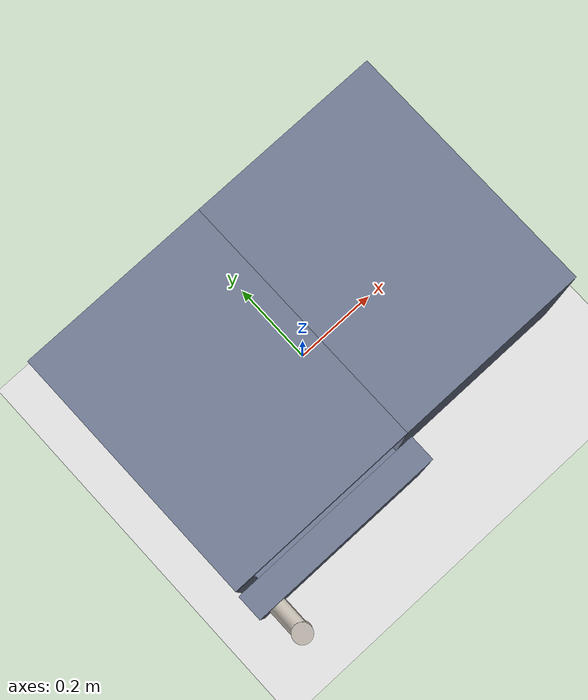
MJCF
<mujoco model="slide">
    <compiler meshdir="" texturedir=""/>
    <include file='../scenes/basic_scene.xml'/>
    <include file="../kitchen/assets/slidecabinet_asset.xml"/>

    <worldbody>

        <body pos="0 0 .25">
		    <include file="../kitchen/assets/slidecabinet_chain.xml"/>
        </body>

    </worldbody>

</mujoco>

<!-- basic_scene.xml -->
<mujocoinclude>
    <asset>
        <texture name="skybox" type="skybox" builtin="gradient" rgb1=".08 .09 .10" rgb2="0 0 0"
               width="800" height="800" mark="random" markrgb=".8 .8 .8"/>

        <texture name="texplane" type="2d" height="1" width="1" file="../scenes/textures/white_marble_tile2.png" />
        <material name='MatPlane' reflectance='0.05' texture="texplane" texrepeat="4 4" texuniform="true"/>
    </asset>

    <visual>
        <quality shadowsize="4048"/>
    </visual>

    <worldbody>
        <light directional='true' diffuse='.3 .3 .3' specular='0.3 0.3 0.3' pos='-1 -1 1' dir='1 1 -1'/>
        <light directional='true' diffuse='.3 .3 .3' specular='0.3 0.3 0.3' pos='1 -1 1' dir='-1 1 -1'/>
        <light directional='true' diffuse='.3 .3 .3' specular='0.3 0.3 0.3' pos='0 1 1' dir='0 -1 -1'/>
        <geom name='floor' pos='0 0 0' size='5 5 .1' conaffinity='1' contype='1' type='plane' material="MatPlane" condim='3'/>
        <site name='xaxis' pos='.5 0 0' size='.005 .5' type='capsule' rgba='1 0 0 .25' euler='0 1.57 0' group='3'/>
        <site name='yaxis' pos='0 .5 0' size='.005 .5' type='capsule' rgba='0 1 0 .25' euler='1.57 0 0' group='3'/>
    </worldbody>
</mujocoinclude>

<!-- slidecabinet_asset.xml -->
<mujocoinclude>

    <compiler inertiafromgeom="auto" inertiagrouprange="4 4" angle="radian"/>

    <asset>
        <texture name="T_slide_metal" type="cube" height="1" width="1" file="../kitchen/textures/metal1.png"/>

        <material name="M_slide_metal" texture="T_slide_metal" texrepeat="3 3" reflectance="0.7" shininess=".4" texuniform="false"/>
        <material name="M_slide_blue" rgba=".46 .5 .6 1" reflectance="0.7" shininess=".4"/>
        <material name="slide_collision_blue" rgba="0.3 0.3 1.0 0.5" shininess="0" specular="0"/>
    </asset>
    <default>
        <default class="slidecabinet">
            <joint damping="2" frictionloss="2" armature=".01" limited="true"/>
            <geom conaffinity="0" contype="0" group="1" material="M_slide_blue" type="mesh"/>
            <default class="slide_collision">
                <geom conaffinity="1" condim="3" contype="0" group="4" margin="0.001" material="slide_collision_blue"/>
            </default>
        </default>
    </default>

</mujocoinclude>

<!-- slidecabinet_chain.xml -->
<mujocoinclude>
    <body name="slide" childclass="slidecabinet">
        <geom pos="-0.225 0 -0.18" size="0.223 0.3 0.02" type="box"/>
        <geom pos="0.224 0 0" size="0.226 0.3 0.2" type="box"/>
        <geom pos="-0.225 0 0.18" size="0.223 0.3 0.02" type="box"/>
        <geom pos="-0.426 0 0" size="0.022 0.3 0.16" type="box"/>
        <geom pos="-0.2 0.276 0.0" size="0.21 0.024 0.16" type="box"/>

        <geom class="slide_collision" pos="-0.225 0 -0.18" size="0.223 0.3 0.02" type="box" mass=".2"/>
        <geom class="slide_collision" pos="0.224 0 0" size="0.226 0.3 0.2" type="box" mass="1"/>
        <geom class="slide_collision" pos="-0.225 0 0.18" size="0.223 0.3 0.02" type="box" mass=".2"/>
        <geom class="slide_collision" pos="-0.426 0 0" size="0.022 0.3 0.16" type="box" mass=".2"/>
        <geom class="slide_collision" pos="-0.2 0.276 0" size="0.2 0.024 0.16" type="box" mass=".2"/>
        <body name="slidelink" pos="-0.225 -0.32 0">
            <joint name="slidedoor_joint" axis="1 0 0" type="slide" range="0 .44"/>
            <geom material="M_slide_metal" euler="1.57 0 0" pos="-0.183 -0.06 -0.114" size="0.019 0.053 0.019" type="cylinder"/>
            <geom material="M_slide_metal" euler="1.57 0 0" pos="-0.183 -0.06 0.114" size="0.019 0.053 0.019" type="cylinder"/>
            <geom material="M_slide_metal" pos="-0.183 -0.123 0" size="0.022 0.159" type="cylinder"/>
            <geom pos="0 -.02 0" size="0.225 0.03 0.195" type="box"/>

            <geom class="slide_collision" pos="0 -.02 0" size="0.225 0.03 0.195" type="box" mass=".2"/>
            <geom class="slide_collision" euler="1.57 0 0" pos="-0.183 -0.06 -0.114" size="0.019 0.053 0.019" type="cylinder" mass=".02"/>
            <geom class="slide_collision" euler="1.57 0 0" pos="-0.183 -0.06 0.114" size="0.019 0.053 0.019" type="cylinder" mass=".02"/>
            <geom class="slide_collision" pos="-0.183 -0.123 0" size="0.022 0.159" type="cylinder" mass=".1"/>
            <site type="sphere" name="slide_site" pos="-0.183 -0.123 0" size=".01" group="3"/>
        </body>
    </body>
</mujocoinclude>
